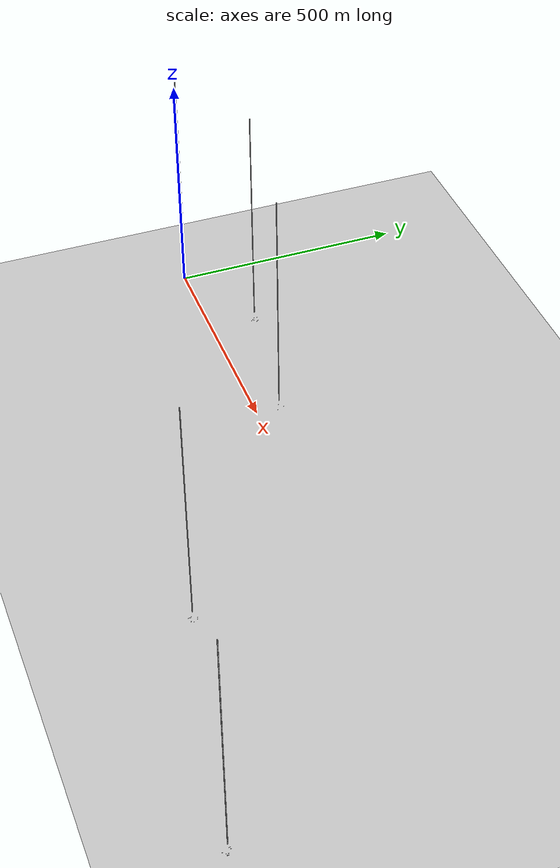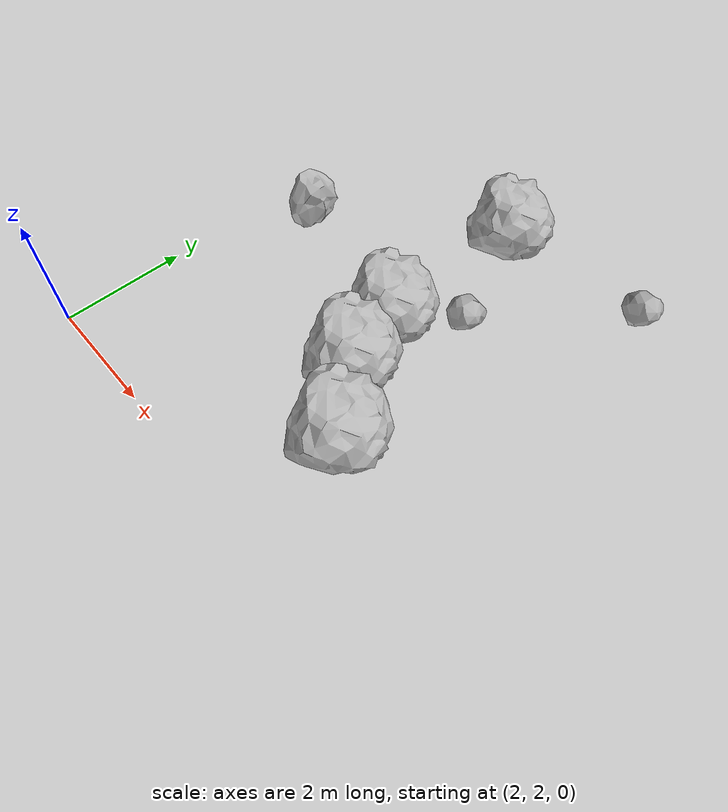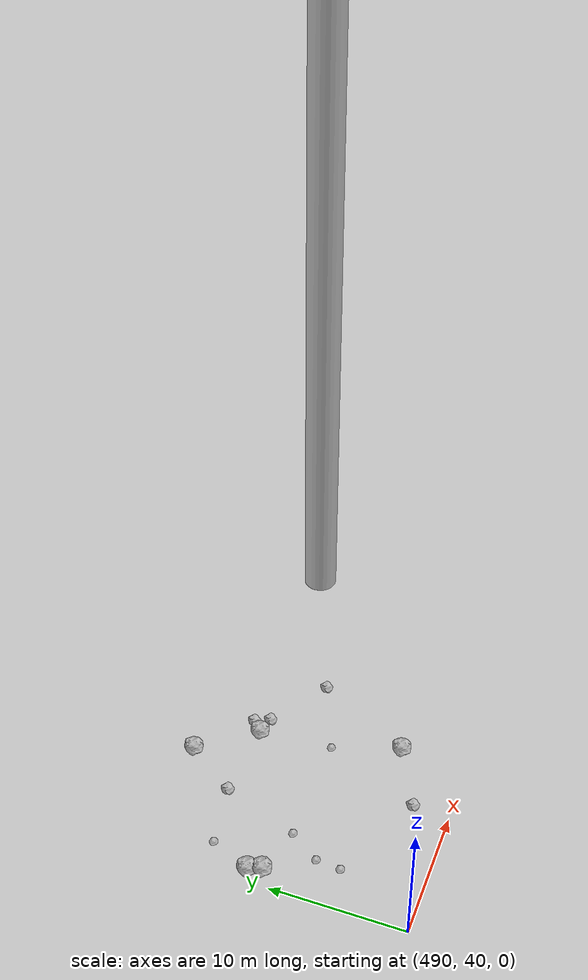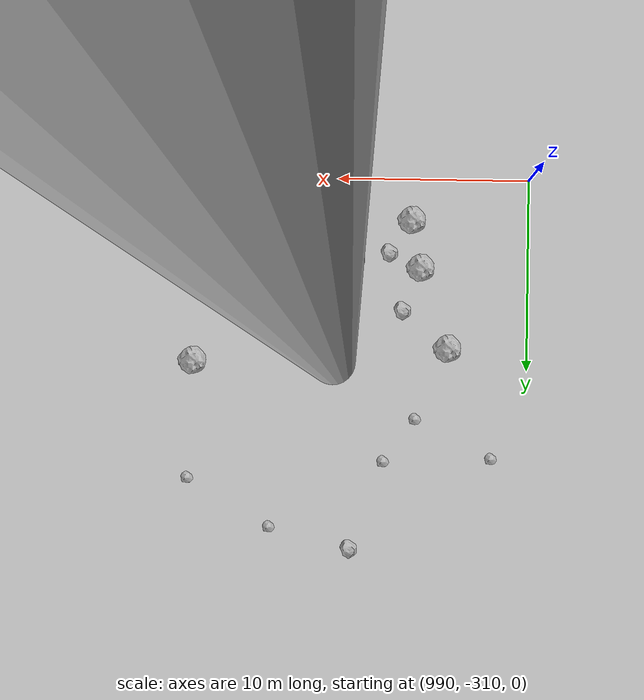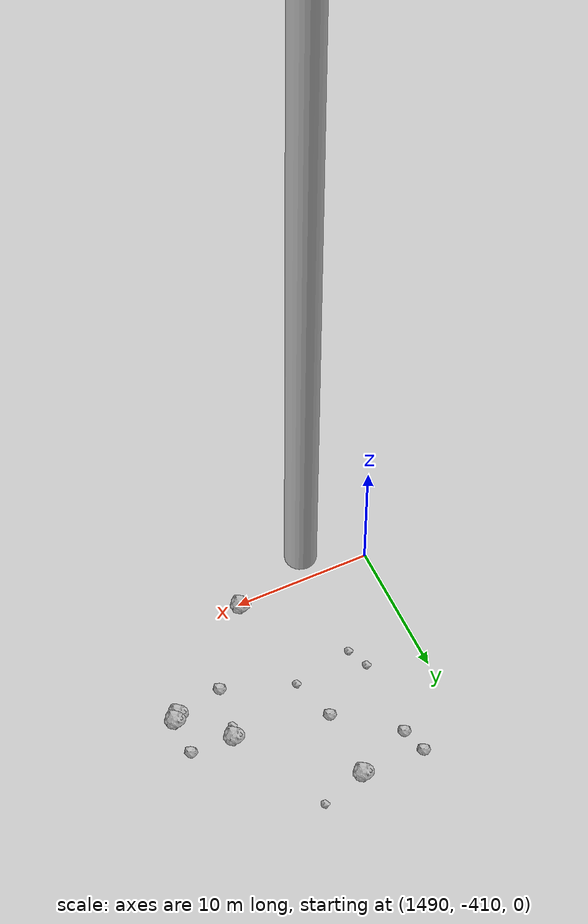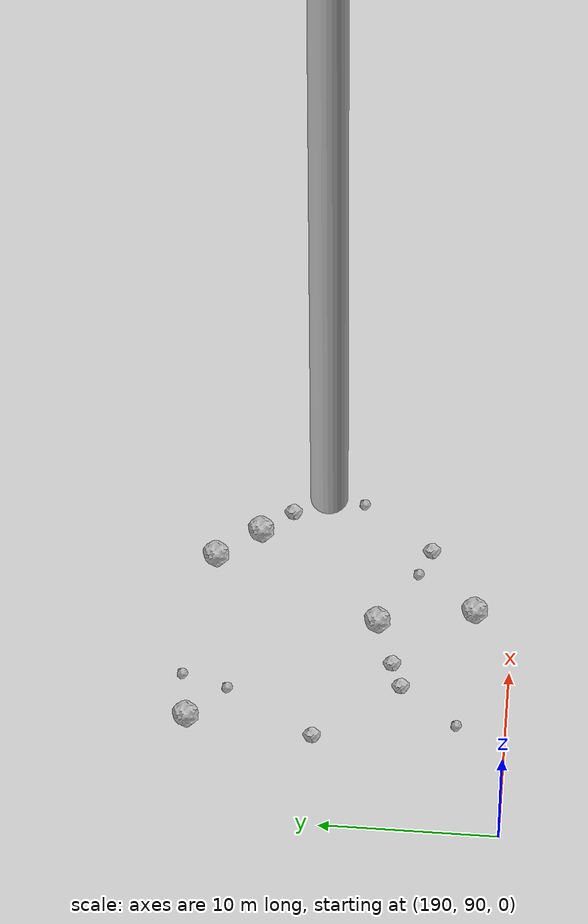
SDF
<?xml version="1.0" ?>
<sdf version="1.6">
  <world name="default">

    <include>
      <uri>model://custom_ground</uri>
    </include>

    <include>
      <uri>model://sun</uri>
    </include>

    <spherical_coordinates>
      <surface_model>EARTH_WGS84</surface_model>
      <latitude_deg>38.161479</latitude_deg>
      <longitude_deg>-122.454630</longitude_deg>
      <elevation>488.0</elevation>
      <heading_deg>90</heading_deg>
    </spherical_coordinates>

    <model name="rock1_0_0">
      <include>
        <uri>model://rock1</uri>
        <pose>5.668311434996987 8.386504077413647 0.5 0 0 0</pose>
      </include>
    </model>
    <model name="rock1_0_1">
      <include>
        <uri>model://rock1</uri>
        <pose>5.552144684721849 5.690982433224381 0.5 0 0 0</pose>
      </include>
    </model>
    <model name="rock1_0_2">
      <include>
        <uri>model://rock1</uri>
        <pose>6.607375162767939 3.702955523819627 0.5 0 0 0</pose>
      </include>
    </model>
    <model name="rock1_0_3">
      <include>
        <uri>model://rock1</uri>
        <pose>18.878384006412418 0.9822266947382694 0.5 0 0 0</pose>
      </include>
    </model>
    <model name="rock1_0_4">
      <include>
        <uri>model://rock1</uri>
        <pose>5.798546312521302 4.667168337270082 0.5 0 0 0</pose>
      </include>
    </model>
    <model name="rock2_0_0">
      <include>
        <uri>model://rock2</uri>
        <pose>15.897795797155096 -3.090526263258047 0.3 0 0 0</pose>
      </include>
    </model>
    <model name="rock2_0_1">
      <include>
        <uri>model://rock2</uri>
        <pose>12.569546790640132 1.178378848198955 0.3 0 0 0</pose>
      </include>
    </model>
    <model name="rock2_0_2">
      <include>
        <uri>model://rock2</uri>
        <pose>12.890953642670937 5.152781966024262 0.3 0 0 0</pose>
      </include>
    </model>
    <model name="rock2_0_3">
      <include>
        <uri>model://rock2</uri>
        <pose>2.7223847850422622 6.457634547030395 0.3 0 0 0</pose>
      </include>
    </model>
    <model name="rock2_0_4">
      <include>
        <uri>model://rock2</uri>
        <pose>9.880971392054441 -2.5639973991600833 0.3 0 0 0</pose>
      </include>
    </model>
    <model name="rock3_0_0">
      <include>
        <uri>model://rock3</uri>
        <pose>6.27609562329331 6.567300965930404 0.2 0 0 0</pose>
      </include>
    </model>
    <model name="rock3_0_1">
      <include>
        <uri>model://rock3</uri>
        <pose>8.126226658847578 8.663562481706684 0.2 0 0 0</pose>
      </include>
    </model>
    <model name="rock3_0_2">
      <include>
        <uri>model://rock3</uri>
        <pose>2.7442287136826904 -3.6775661736992866 0.2 0 0 0</pose>
      </include>
    </model>
    <model name="rock3_0_3">
      <include>
        <uri>model://rock3</uri>
        <pose>19.068855387390858 2.96502885209253 0.2 0 0 0</pose>
      </include>
    </model>
    <model name="rock3_0_4">
      <include>
        <uri>model://rock3</uri>
        <pose>17.99203674810123 4.6427839578402175 0.2 0 0 0</pose>
      </include>
    </model>
    <model name="rock1_1_0">
      <include>
        <uri>model://rock1</uri>
        <pose>196.12287130023776 107.75747126692907 0.5 0 0 0</pose>
      </include>
    </model>
    <model name="rock1_1_1">
      <include>
        <uri>model://rock1</uri>
        <pose>207.85558966597193 104.41825281944615 0.5 0 0 0</pose>
      </include>
    </model>
    <model name="rock1_1_2">
      <include>
        <uri>model://rock1</uri>
        <pose>202.63638825202182 97.54606142731728 0.5 0 0 0</pose>
      </include>
    </model>
    <model name="rock1_1_3">
      <include>
        <uri>model://rock1</uri>
        <pose>203.5987498524147 92.16625179797603 0.5 0 0 0</pose>
      </include>
    </model>
    <model name="rock1_1_4">
      <include>
        <uri>model://rock1</uri>
        <pose>206.14370587355612 106.82549176586167 0.5 0 0 0</pose>
      </include>
    </model>
    <model name="rock2_1_0">
      <include>
        <uri>model://rock2</uri>
        <pose>200.0593685414938 96.56446816549865 0.3 0 0 0</pose>
      </include>
    </model>
    <model name="rock2_1_1">
      <include>
        <uri>model://rock2</uri>
        <pose>198.6952341311944 95.99344471500325 0.3 0 0 0</pose>
      </include>
    </model>
    <model name="rock2_1_2">
      <include>
        <uri>model://rock2</uri>
        <pose>195.35976349352657 100.70005919249073 0.3 0 0 0</pose>
      </include>
    </model>
    <model name="rock2_1_3">
      <include>
        <uri>model://rock2</uri>
        <pose>209.11463567332135 102.68954521024054 0.3 0 0 0</pose>
      </include>
    </model>
    <model name="rock2_1_4">
      <include>
        <uri>model://rock2</uri>
        <pose>207.19049111160044 94.7818549195654 0.3 0 0 0</pose>
      </include>
    </model>
    <model name="rock3_1_0">
      <include>
        <uri>model://rock3</uri>
        <pose>198.66831395278908 108.12311296119398 0.2 0 0 0</pose>
      </include>
    </model>
    <model name="rock3_1_1">
      <include>
        <uri>model://rock3</uri>
        <pose>196.48898623665812 92.7589661220542 0.2 0 0 0</pose>
      </include>
    </model>
    <model name="rock3_1_2">
      <include>
        <uri>model://rock3</uri>
        <pose>209.87748570415178 98.70317088436595 0.2 0 0 0</pose>
      </include>
    </model>
    <model name="rock3_1_3">
      <include>
        <uri>model://rock3</uri>
        <pose>205.70362091291173 95.40631087791698 0.2 0 0 0</pose>
      </include>
    </model>
    <model name="rock3_1_4">
      <include>
        <uri>model://rock3</uri>
        <pose>197.9752307251928 105.58016333596672 0.2 0 0 0</pose>
      </include>
    </model>
    <model name="rock1_2_0">
      <include>
        <uri>model://rock1</uri>
        <pose>505.1758982057455 45.13390243638041 0.5 0 0 0</pose>
      </include>
    </model>
    <model name="rock1_2_1">
      <include>
        <uri>model://rock1</uri>
        <pose>499.8309236824154 59.86512291063941 0.5 0 0 0</pose>
      </include>
    </model>
    <model name="rock1_2_2">
      <include>
        <uri>model://rock1</uri>
        <pose>503.0841114513922 55.78467874899444 0.5 0 0 0</pose>
      </include>
    </model>
    <model name="rock1_2_3">
      <include>
        <uri>model://rock1</uri>
        <pose>490.95952836692953 51.97669112901425 0.5 0 0 0</pose>
      </include>
    </model>
    <model name="rock1_2_4">
      <include>
        <uri>model://rock1</uri>
        <pose>491.3057322554459 50.98489087980097 0.5 0 0 0</pose>
      </include>
    </model>
    <model name="rock2_2_0">
      <include>
        <uri>model://rock2</uri>
        <pose>509.1723791123524 52.57920537344812 0.3 0 0 0</pose>
      </include>
    </model>
    <model name="rock2_2_1">
      <include>
        <uri>model://rock2</uri>
        <pose>504.4512056875895 55.49629710041988 0.3 0 0 0</pose>
      </include>
    </model>
    <model name="rock2_2_2">
      <include>
        <uri>model://rock2</uri>
        <pose>503.92405933447805 56.62772851806346 0.3 0 0 0</pose>
      </include>
    </model>
    <model name="rock2_2_3">
      <include>
        <uri>model://rock2</uri>
        <pose>500.246917972819 42.771117233952666 0.3 0 0 0</pose>
      </include>
    </model>
    <model name="rock2_2_4">
      <include>
        <uri>model://rock2</uri>
        <pose>496.9725013903924 55.954383887532344 0.3 0 0 0</pose>
      </include>
    </model>
    <model name="rock3_2_0">
      <include>
        <uri>model://rock3</uri>
        <pose>493.1026051100177 45.86359714771979 0.2 0 0 0</pose>
      </include>
    </model>
    <model name="rock3_2_1">
      <include>
        <uri>model://rock3</uri>
        <pose>494.8717605416374 50.03649153705347 0.2 0 0 0</pose>
      </include>
    </model>
    <model name="rock3_2_2">
      <include>
        <uri>model://rock3</uri>
        <pose>503.4195922551085 50.14485433945262 0.2 0 0 0</pose>
      </include>
    </model>
    <model name="rock3_2_3">
      <include>
        <uri>model://rock3</uri>
        <pose>493.27522822872953 47.7159050233405 0.2 0 0 0</pose>
      </include>
    </model>
    <model name="rock3_2_4">
      <include>
        <uri>model://rock3</uri>
        <pose>492.2533721943843 55.04411486887062 0.2 0 0 0</pose>
      </include>
    </model>
    <model name="rock1_3_0">
      <include>
        <uri>model://rock1</uri>
        <pose>1007.5572673280683 -300.34210811827205 0.5 0 0 0</pose>
      </include>
    </model>
    <model name="rock1_3_1">
      <include>
        <uri>model://rock1</uri>
        <pose>1005.4321302012644 -305.03108629493715 0.5 0 0 0</pose>
      </include>
    </model>
    <model name="rock1_3_2">
      <include>
        <uri>model://rock1</uri>
        <pose>994.2115963676307 -301.13020111548695 0.5 0 0 0</pose>
      </include>
    </model>
    <model name="rock1_3_3">
      <include>
        <uri>model://rock1</uri>
        <pose>995.667360524984 -305.34594333954175 0.5 0 0 0</pose>
      </include>
    </model>
    <model name="rock1_3_4">
      <include>
        <uri>model://rock1</uri>
        <pose>996.1504036642881 -307.84524325974235 0.5 0 0 0</pose>
      </include>
    </model>
    <model name="rock2_3_0">
      <include>
        <uri>model://rock2</uri>
        <pose>997.2909643540904 -306.10957063762135 0.3 0 0 0</pose>
      </include>
    </model>
    <model name="rock2_3_1">
      <include>
        <uri>model://rock2</uri>
        <pose>999.2234007835938 -290.5546686930584 0.3 0 0 0</pose>
      </include>
    </model>
    <model name="rock2_3_2">
      <include>
        <uri>model://rock2</uri>
        <pose>996.5664766915423 -303.08694651376067 0.3 0 0 0</pose>
      </include>
    </model>
    <model name="rock2_3_3">
      <include>
        <uri>model://rock2</uri>
        <pose>1005.5599979055492 -306.7962744120203 0.3 0 0 0</pose>
      </include>
    </model>
    <model name="rock2_3_4">
      <include>
        <uri>model://rock2</uri>
        <pose>999.00593269889 -305.7790086350028 0.3 0 0 0</pose>
      </include>
    </model>
    <model name="rock3_3_0">
      <include>
        <uri>model://rock3</uri>
        <pose>1003.4270919370737 -291.6862252690811 0.2 0 0 0</pose>
      </include>
    </model>
    <model name="rock3_3_1">
      <include>
        <uri>model://rock3</uri>
        <pose>1007.7380809314043 -294.212109668273 0.2 0 0 0</pose>
      </include>
    </model>
    <model name="rock3_3_2">
      <include>
        <uri>model://rock3</uri>
        <pose>997.4840468355128 -295.1826241605429 0.2 0 0 0</pose>
      </include>
    </model>
    <model name="rock3_3_3">
      <include>
        <uri>model://rock3</uri>
        <pose>991.8293135285184 -295.382804971311 0.2 0 0 0</pose>
      </include>
    </model>
    <model name="rock3_3_4">
      <include>
        <uri>model://rock3</uri>
        <pose>995.832910214219 -297.4243287790972 0.2 0 0 0</pose>
      </include>
    </model>
    <model name="rock1_4_0">
      <include>
        <uri>model://rock1</uri>
        <pose>1507.908098174156 -403.13046236447383 0.5 0 0 0</pose>
      </include>
    </model>
    <model name="rock1_4_1">
      <include>
        <uri>model://rock1</uri>
        <pose>1507.5387830864706 -403.4822552661091 0.5 0 0 0</pose>
      </include>
    </model>
    <model name="rock1_4_2">
      <include>
        <uri>model://rock1</uri>
        <pose>1504.775119926028 -400.2577348688772 0.5 0 0 0</pose>
      </include>
    </model>
    <model name="rock1_4_3">
      <include>
        <uri>model://rock1</uri>
        <pose>1498.0081141668165 -394.03242482580873 0.5 0 0 0</pose>
      </include>
    </model>
    <model name="rock1_4_4">
      <include>
        <uri>model://rock1</uri>
        <pose>1499.9728901208991 -409.7358393414462 0.5 0 0 0</pose>
      </include>
    </model>
    <model name="rock2_4_0">
      <include>
        <uri>model://rock2</uri>
        <pose>1507.860715993469 -400.47007323827387 0.3 0 0 0</pose>
      </include>
    </model>
    <model name="rock2_4_1">
      <include>
        <uri>model://rock2</uri>
        <pose>1498.0338921200303 -399.11738628945335 0.3 0 0 0</pose>
      </include>
    </model>
    <model name="rock2_4_2">
      <include>
        <uri>model://rock2</uri>
        <pose>1504.0537835943112 -404.18642461594925 0.3 0 0 0</pose>
      </include>
    </model>
    <model name="rock2_4_3">
      <include>
        <uri>model://rock2</uri>
        <pose>1493.976025457284 -395.8033430374122 0.3 0 0 0</pose>
      </include>
    </model>
    <model name="rock2_4_4">
      <include>
        <uri>model://rock2</uri>
        <pose>1493.4307542755082 -393.9498598091784 0.3 0 0 0</pose>
      </include>
    </model>
    <model name="rock3_4_0">
      <include>
        <uri>model://rock3</uri>
        <pose>1493.952766268567 -401.6870464987566 0.2 0 0 0</pose>
      </include>
    </model>
    <model name="rock3_4_1">
      <include>
        <uri>model://rock3</uri>
        <pose>1499.0094269321628 -402.3618690002703 0.2 0 0 0</pose>
      </include>
    </model>
    <model name="rock3_4_2">
      <include>
        <uri>model://rock3</uri>
        <pose>1494.5911449311814 -403.23908910938894 0.2 0 0 0</pose>
      </include>
    </model>
    <model name="rock3_4_3">
      <include>
        <uri>model://rock3</uri>
        <pose>1504.4168580046874 -401.219306501256 0.2 0 0 0</pose>
      </include>
    </model>
    <model name="rock3_4_4">
      <include>
        <uri>model://rock3</uri>
        <pose>1501.2682663726691 -393.12220525612446 0.2 0 0 0</pose>
      </include>
    </model>

    <model name="cylinder_1">
      <static>true</static>
      <link name="link">
        <visual name="visual">
          <geometry>
            <cylinder>
              <radius>1</radius>
              <length>500</length>
            </cylinder>
          </geometry>
        </visual>
      </link>
      <pose>10 0 270 0 0 0</pose>
    </model>

    <model name="cylinder_2">
      <static>true</static>
      <link name="link">
        <visual name="visual">
          <geometry>
            <cylinder>
              <radius>1</radius>
              <length>500</length>
            </cylinder>
          </geometry>
        </visual>
      </link>
      <pose>200 100 270 0 0 0</pose>
    </model>

    <model name="cylinder_3">
      <static>true</static>
      <link name="link">
        <visual name="visual">
          <geometry>
            <cylinder>
              <radius>1</radius>
              <length>500</length>
            </cylinder>
          </geometry>
        </visual>
      </link>
      <pose>500 50 270 0 0 0</pose>
    </model>

    <model name="cylinder_4">
      <static>true</static>
      <link name="link">
        <visual name="visual">
          <geometry>
            <cylinder>
              <radius>1</radius>
              <length>500</length>
            </cylinder>
          </geometry>
        </visual>
      </link>
      <pose>1000 -300 270 0 0 0</pose>
    </model>

    <model name="cylinder_5">
      <static>true</static>
      <link name="link">
        <visual name="visual">
          <geometry>
            <cylinder>
              <radius>1</radius>
              <length>500</length>
            </cylinder>
          </geometry>
        </visual>
      </link>
      <pose>1500 -400 270 0 0 0</pose>
    </model>

  </world>
</sdf>

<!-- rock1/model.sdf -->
<sdf version="1.6">
  <model name="rock1">
    <static>true</static> <!-- Set to true if the model should not move -->
    <pose>0 0 0 0 0 0</pose>

    <!--z offset is 0.5 for full scale-->

    <link name="link">
      <collision name="rock1_collision">
        <geometry>
          <mesh>
            <uri>model://meshes/rock1.dae</uri>
          </mesh>
        </geometry>
      </collision>
      <visual name="rock1_visual">
        <geometry>
          <mesh>
            <uri>model://meshes/rock1.dae</uri>
          </mesh>
        </geometry>
        <material>
          <script>
            <uri>model://materials/scripts/sand_pebbles.material</uri>
            <name>custom_ground/Image</name>
          </script>
        </material>
      </visual>
    </link>
  </model>
</sdf>

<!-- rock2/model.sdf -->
<sdf version="1.6">
  <model name="rock2">
    <static>true</static> <!-- Set to true if the model should not move -->
    <pose>0 0 0 0 0 0</pose>

    <!--z offset is 0.3 for full scale-->

    <link name="link">
      <collision name="rock2_collision">
        <geometry>
          <mesh>
            <uri>model://meshes/rock2.dae</uri>
          </mesh>
        </geometry>
      </collision>
      <visual name="rock2_visual">
        <geometry>
          <mesh>
            <uri>model://meshes/rock2.dae</uri>
          </mesh>
        </geometry>
        <material>
          <script>
            <uri>model://materials/scripts/sand_pebbles.material</uri>
            <name>custom_ground/Image</name>
          </script>
        </material>
      </visual>
    </link>
  </model>
</sdf>

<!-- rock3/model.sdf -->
<sdf version="1.6">
  <model name="rock3">
    <static>true</static> <!-- Set to true if the model should not move -->
    <pose>0 0 0 0 0 0</pose>

    <!--z offset is 0.2 for full scale-->

    <link name="link">
      <collision name="rock3_collision">
        <geometry>
          <mesh>
            <uri>model://meshes/rock3.dae</uri>
          </mesh>
        </geometry>
      </collision>
      <visual name="rock3_visual">
        <geometry>
          <mesh>
            <uri>model://meshes/rock3.dae</uri>
          </mesh>
        </geometry>
        <material>
          <script>
            <uri>model://materials/scripts/sand_pebbles.material</uri>
            <name>custom_ground/Image</name>
          </script>
        </material>
      </visual>
    </link>
  </model>
</sdf>

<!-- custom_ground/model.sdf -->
<sdf version="1.6">
  <model name="custom_ground">
    <static>true</static> <!-- Ground is static and immovable -->
    <link name="ground_link">
      <pose>240 0 0 0 0 0</pose> <!-- Position and orientation relative to the world -->
      <!-- Visual Representation -->
      <visual name="ground_visual">
        <geometry>
          <plane>
            <normal>0 0 1</normal> <!-- Upward facing plane -->
            <size>500 500</size> <!-- Size of the plane -->
          </plane>
        </geometry>
        <material>
          <script>
            <uri>model://materials/scripts/sand_pebbles.material</uri>
            <name>custom_ground/Image</name>
          </script>
        </material>
      </visual>

      <!-- Collision Representation -->
      <collision name="ground_collision">
        <geometry>
          <plane>
            <normal>0 0 1</normal>
            <size>100 100</size>
          </plane>
        </geometry>
      </collision>

    </link>
  </model>
</sdf>
